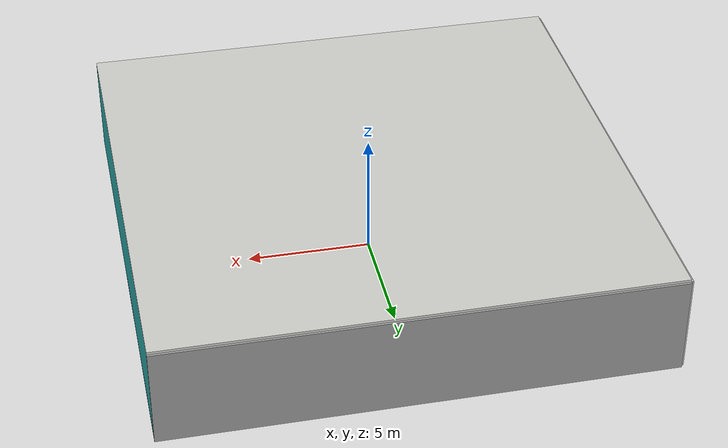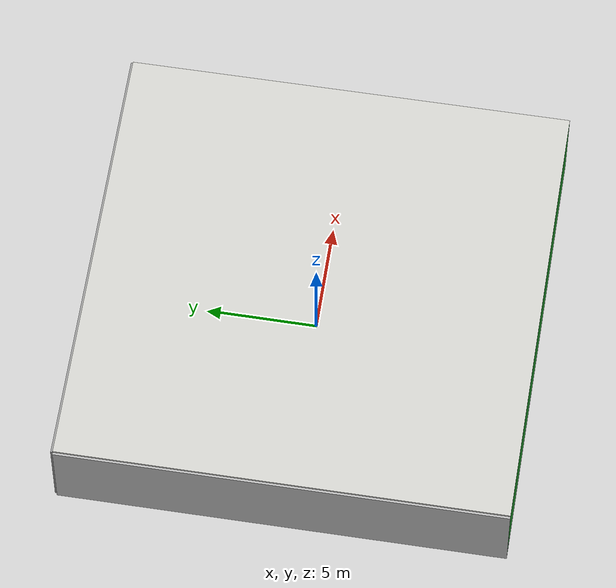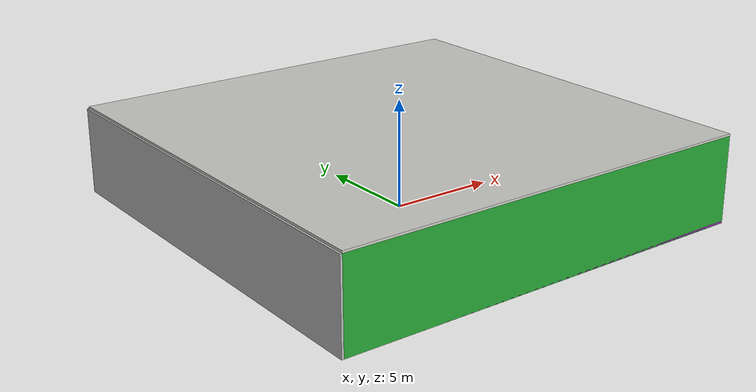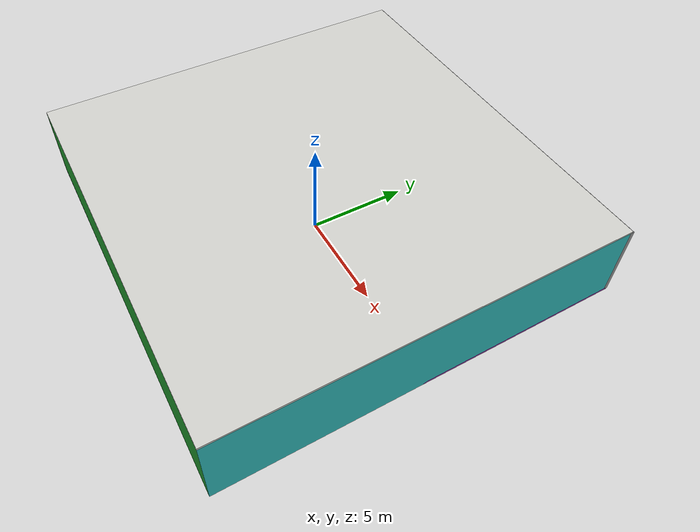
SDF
<sdf version="1.4">
 <world name="default">
  <physics type="ode">
   <max_step_size>0.001</max_step_size>
   <real_time_factor>1</real_time_factor>
   <real_time_update_rate>1000</real_time_update_rate>
   <gravity>0 0 -9.8</gravity>
  </physics>
  <scene><ambient>0.4 0.4 0.4 1</ambient><background>0.7 0.7 0.7 1</background><shadows>1</shadows></scene>
  <model name="Surrounding">
   <static>1</static>
   <link name="Ceiling">
    <collision name="Ceiling_Collision"><geometry><box><size>20 20 0.1</size></box></geometry></collision>
    <visual name="Ceiling_Visual">
     <geometry><box><size>20 20 0.1</size></box></geometry>
     <material>
      <script><uri>file://media/materials/scripts/gazebo.material</uri><name>Gazebo/CeilingTiled</name></script>
     </material>
    </visual>
    <pose>0 0 4.05 0 0 0</pose>
   </link>
   <link name="Wall_South">
    <collision name="Wall_South_Collision">
     <geometry><box><size>20 0 4</size></box></geometry>
     <pose>0 0 2 0 -0 0</pose>
    </collision>
    <visual name="Wall_South_Visual">
     <pose>0 0 2 0 -0 0</pose>
     <geometry><box><size>20 0 4</size></box></geometry>
     <material>
      <script><uri>file://media/materials/scripts/gazebo.material</uri><name>Gazebo/GreenGlow</name></script>
     </material>
    </visual>
    <velocity_decay><linear>0</linear><angular>0</angular></velocity_decay>
    <pose>0 -10 0 0 -0 0</pose>
   </link>
   <link name="Wall_East">
    <collision name="Wall_21_Collision">
     <geometry><box><size>20 0 4</size></box></geometry>
     <pose>0 0 2 0 -0 0</pose>
    </collision>
    <visual name="Wall_21_Visual">
     <pose>0 0 2 0 -0 0</pose>
     <geometry><box><size>20 0 4</size></box></geometry>
     <material>
      <script>
       <uri>file://media/materials/scripts/gazebo.material</uri>
       <name>Gazebo/TurquoiseGlowOutline</name>
      </script>
     </material>
    </visual>
    <velocity_decay><linear>0</linear><angular>0</angular></velocity_decay>
    <pose>10 0 0 0 -0 1.5708</pose>
   </link>
   <link name="Wall_North">
    <collision name="Wall_22_Collision">
     <geometry><box><size>20 0.2 4</size></box></geometry>
     <pose>0 0 2 0 -0 0</pose>
    </collision>
    <visual name="Wall_22_Visual">
     <pose>0 0 2 0 -0 0</pose>
     <geometry><box><size>20 0.2 4</size></box></geometry>
     <material>
      <script><uri>file://media/materials/scripts/gazebo.material</uri><name>Gazebo/GreyGradientSky</name></script>
     </material>
    </visual>
    <velocity_decay><linear>0</linear><angular>0</angular></velocity_decay>
    <pose>0 10 0 0 -0 0</pose>
   </link>
   <link name="Wall_West">
    <collision name="Wall_23_Collision">
     <geometry><box><size>20 0.2 4</size></box></geometry>
     <pose>0 0 2 0 -0 0</pose>
    </collision>
    <visual name="Wall_23_Visual">
     <pose>0 0 2 0 -0 0</pose>
     <geometry><box><size>20 0.2 4</size></box></geometry>
     <material>
      <script><uri>file://media/materials/scripts/gazebo.material</uri><name>Gazebo/LightOn</name></script>
     </material>
    </visual>
    <velocity_decay><linear>0</linear><angular>0</angular></velocity_decay>
    <pose>-10 0 0 0 0 -1.5708</pose>
   </link>
   <link name="Ground_link">
    <collision name="collision">
     <pose>0 0 .05 0 -0 0</pose>
     <geometry><box><size>20 20 0.1</size></box></geometry>
    </collision>
    <visual name="visual">
     <pose>0 0 .05 0 -0 0</pose>
     <geometry><box><size>20 20 0.1</size></box></geometry>
     <material>
      <script><uri>file://media/materials/scripts/gazebo.material</uri><name>Gazebo/PurpleGlow</name></script>
     </material>
    </visual>
   </link>
   <static>1</static>
  </model>
  <spherical_coordinates>
   <surface_model>EARTH_WGS84</surface_model>
   <latitude_deg>0</latitude_deg>
   <longitude_deg>0</longitude_deg>
   <elevation>0</elevation>
   <heading_deg>0</heading_deg>
  </spherical_coordinates>
  <light name="lightball_0" type="diffuse">
   <diffuse>0.8 0.8 0.8 1</diffuse>
   <specular>0.2 0.2 0.2 1</specular>
   <attenuation>
    <range>100</range>
    <constant>0.7</constant>
    <linear>0.01</linear>
    <quadratic>0.001</quadratic>
   </attenuation>
   <direction>-0.5 0.1 -0.9</direction>
   <pose>-1.15674897587 -9.23434875111 3.61947312362 0 0 0</pose>
  </light>
  <light name="lightball_1" type="diffuse">
   <diffuse>0.8 0.8 0.8 1</diffuse>
   <specular>0.2 0.2 0.2 1</specular>
   <attenuation>
    <range>100</range>
    <constant>0.7</constant>
    <linear>0.01</linear>
    <quadratic>0.001</quadratic>
   </attenuation>
   <direction>-0.5 0.1 -0.9</direction>
   <pose>-8.57847212246 2.7779531991 3.78677853122 0 0 0</pose>
  </light>
  <include><uri>model://cabinet</uri><pose>-4.12704913624 -4.8380837534 0 0 0 1.31606543918</pose></include>
  <include>
   <uri>model://construction_cone</uri>
   <pose>-4.94732076871 6.76099349275 0 0 0 0.75400867949</pose>
  </include>
  <include>
   <uri>model://construction_cone</uri>
   <pose>-1.16280248997 4.4430731085 0 0 0 0.0563677895508</pose>
  </include>
  <include>
   <uri>model://construction_cone</uri>
   <pose>-1.10599195209 7.74232790542 0 0 0 0.570764600093</pose>
  </include>
  <include>
   <uri>model://robocup_3Dsim_goal</uri>
   <pose>2.18963644382 -4.87309632854 0 0 0 0.265749588272</pose>
  </include>
  <include><uri>model://cabinet</uri><pose>1.9358770397 -1.42446496628 0 0 0 2.13276726083</pose></include>
  <include><uri>model://cabinet</uri><pose>4.34391315964 -8.07515055136 0 0 0 2.89332760875</pose></include>
  <include><uri>model://table</uri><pose>3.93805268872 -1.12938658792 0 0 0 0.0813628858361</pose></include>
  <include><uri>model://cabinet</uri><pose>7.43453792156 7.14950305619 0 0 0 0.644961850188</pose></include>
 </world>
</sdf>

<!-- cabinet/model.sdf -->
<sdf version="1.5">
  <model name="cabinet">
    <static>true</static>
    <link name="cabinet_bottom_plate">
      <inertial>
        <pose>0 0 -1 0 0 0</pose>
        <inertia>
          <ixx>2.050000</ixx>
          <ixy>0</ixy>
          <ixz>0</ixz>
          <iyy>2.050000</iyy>
          <iyz>0</iyz>
          <izz>2.050000</izz>
        </inertia>
        <mass>25.000000</mass>
      </inertial>
      <collision name="cabinet_bottom_plate_geom">
        <pose>0 0 0.010000 0 0 0</pose>
        <geometry>
          <box>
            <size>0.450000 0.450000 0.020000</size>
          </box>
        </geometry>
      </collision>
      <visual name="cabinet_bottom_plate_geom_visual">
        <pose>0 0 0.010000 0 0 0</pose>
        <geometry>
          <box>
            <size>0.450000 0.450000 0.020000</size>
          </box>
        </geometry>
        <material>
          <script>
            <uri>model://media/materials/scripts/gazebo.material</uri>
            <name>Gazebo/Wood</name>
          </script>
        </material>
      </visual>
      <collision name="cabinet_bottom_plate_geom_cabinet_back_plate">
        <pose>0.235000 0 0.510000 0 0 0</pose>
        <geometry>
          <box>
            <size>0.020000 0.450000 1.020000</size>
          </box>
        </geometry>
      </collision>
      <visual name="cabinet_bottom_plate_geom_cabinet_back_plate_visual">
        <pose>0.235000 0 0.510000 0 0 0</pose>
        <geometry>
          <box>
            <size>0.020000 0.450000 1.020000</size>
          </box>
        </geometry>
        <material>
          <script>
            <uri>model://media/materials/scripts/gazebo.material</uri>
            <name>Gazebo/Wood</name>
          </script>
        </material>
      </visual>
      <collision name="cabinet_bottom_plate_geom_cabinet_left_plate">
        <pose>0 0.235000 0.510000 0 0 0</pose>
        <geometry>
          <box>
            <size>0.450000 0.020000 1.020000</size>
          </box>
        </geometry>
      </collision>
      <visual name="cabinet_bottom_plate_geom_cabinet_left_plate_visual">
        <pose>0 0.235000 0.510000 0 0 0</pose>
        <geometry>
          <box>
            <size>0.450000 0.020000 1.020000</size>
          </box>
        </geometry>
        <material>
          <script>
            <uri>model://media/materials/scripts/gazebo.material</uri>
            <name>Gazebo/Wood</name>
          </script>
        </material>
      </visual>
      <collision name="cabinet_bottom_plate_geom_cabinet_middle_plate">
        <pose>0 0 0.510000 0 0 0</pose>
        <geometry>
          <box>
            <size>0.450000 0.450000 0.020000</size>
          </box>
        </geometry>
      </collision>
      <visual name="cabinet_bottom_plate_geom_cabinet_middle_plate_visual">
        <pose>0 0 0.510000 0 0 0</pose>
        <geometry>
          <box>
            <size>0.450000 0.450000 0.020000</size>
          </box>
        </geometry>
        <material>
          <script>
            <uri>model://media/materials/scripts/gazebo.material</uri>
            <name>Gazebo/Wood</name>
          </script>
        </material>
      </visual>
      <collision name="cabinet_bottom_plate_geom_cabinet_right_plate">
        <pose>0 -0.235000 0.510000 0 0 0</pose>
        <geometry>
          <box>
            <size>0.450000 0.020000 1.020000</size>
          </box>
        </geometry>
      </collision>
      <visual name="cabinet_bottom_plate_geom_cabinet_right_plate_visual">
        <pose>0 -0.235000 0.510000 0 0 0</pose>
        <geometry>
          <box>
            <size>0.450000 0.020000 1.020000</size>
          </box>
        </geometry>
        <material>
          <script>
            <uri>model://media/materials/scripts/gazebo.material</uri>
            <name>Gazebo/Wood</name>
          </script>
        </material>
      </visual>
      <collision name="cabinet_bottom_plate_geom_cabinet_top_plate">
        <pose>0 0 1.010000 0 0 0</pose>
        <geometry>
          <box>
            <size>0.450000 0.450000 0.020000</size>
          </box>
        </geometry>
      </collision>
      <visual name="cabinet_bottom_plate_geom_cabinet_top_plate_visual">
        <pose>0 0 1.010000 0 0 0</pose>
        <geometry>
          <box>
            <size>0.450000 0.450000 0.020000</size>
          </box>
        </geometry>
        <material>
          <script>
            <uri>model://media/materials/scripts/gazebo.material</uri>
            <name>Gazebo/Wood</name>
          </script>
        </material>
      </visual>
    </link>
  </model>
</sdf>

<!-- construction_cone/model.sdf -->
<sdf version="1.5">
  <model name="Construction Cone">
    <link name="link">
      <collision name="collision">
        <geometry>
          <mesh>
            <scale>10 10 10</scale>
            <uri>file://isr-testbed/construction_cone/meshes/construction_cone.dae</uri>
          </mesh>
        </geometry>
      </collision>
      <visual name="visual">
        <geometry>
          <mesh>
            <scale>10 10 10</scale>
            <uri>file://isr-testbed/construction_cone/meshes/construction_cone.dae</uri>
          </mesh>
        </geometry>
      </visual>
    </link>
  </model>
</sdf>

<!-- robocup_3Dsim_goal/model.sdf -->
<sdf version="1.5">
  <model name="robocup_3d_goal">
    <static>true</static>
    <link name="left_post">
      <pose>0 1.05 0.45 0 0 0</pose>
      <collision name="collision">
        <geometry>
          <cylinder>
            <radius>0.05</radius>
            <length>0.9</length>
          </cylinder>
        </geometry>
      </collision>
      <visual name="visual">
        <geometry>
          <cylinder>
            <radius>0.05</radius>
            <length>0.9</length>
          </cylinder>
        </geometry>
        <material>
          <script>
            <uri>file://media/materials/scripts/gazebo.material</uri>
            <name>Gazebo/ZincYellow</name>
          </script>
        </material>
      </visual>
    </link>
    <link name="left_support_horiz_lower">
      <pose>0.30 1.05 0.01 0 0 0</pose>
      <collision name="collision">
        <geometry>
          <box>
            <size>0.50 0.02 0.02</size>
          </box>
        </geometry>
      </collision>
      <visual name="visual">
        <geometry>
          <box>
            <size>0.50 0.02 0.02</size>
          </box>
        </geometry>
        <material>
          <script>
            <uri>file://media/materials/scripts/gazebo.material</uri>
            <name>Gazebo/White</name>
          </script>
        </material>
      </visual>
    </link>
    <link name="left_support_horiz_upper">
      <pose>0.30 1.05 0.79 0 0 0</pose>
      <collision name="collision">
        <geometry>
          <box>
            <size>0.50 0.02 0.02</size>
          </box>
        </geometry>
      </collision>
      <visual name="visual">
        <geometry>
          <box>
            <size>0.50 0.02 0.02</size>
          </box>
        </geometry>
        <material>
          <script>
            <uri>file://media/materials/scripts/gazebo.material</uri>
            <name>Gazebo/White</name>
          </script>
        </material>
      </visual>
    </link>
    <link name="left_support_vertical">
      <pose>0.56 1.05 0.4 0 1.5708 0</pose>
      <collision name="collision">
        <geometry>
          <box>
            <size>0.80 0.02 0.02</size>
          </box>
        </geometry>
      </collision>
      <visual name="visual">
        <geometry>
          <box>
            <size>0.80 0.02 0.02</size>
          </box>
        </geometry>
        <material>
          <script>
            <uri>file://media/materials/scripts/gazebo.material</uri>
            <name>Gazebo/White</name>
          </script>
        </material>
      </visual>
    </link>
    <link name="right_support_horiz_lower">
      <pose>0.30 -1.05 0.01 0 0 0</pose>
      <collision name="collision">
        <geometry>
          <box>
            <size>0.50 0.02 0.02</size>
          </box>
        </geometry>
      </collision>
      <visual name="visual">
        <geometry>
          <box>
            <size>0.50 0.02 0.02</size>
          </box>
        </geometry>
        <material>
          <script>
            <uri>file://media/materials/scripts/gazebo.material</uri>
            <name>Gazebo/White</name>
          </script>
        </material>
      </visual>
    </link>
    <link name="right_support_horiz_upper">
      <pose>0.30 -1.05 0.79 0 0 0</pose>
      <collision name="collision">
        <geometry>
          <box>
            <size>0.50 0.02 0.02</size>
          </box>
        </geometry>
      </collision>
      <visual name="visual">
        <geometry>
          <box>
            <size>0.50 0.02 0.02</size>
          </box>
        </geometry>
        <material>
          <script>
            <uri>file://media/materials/scripts/gazebo.material</uri>
            <name>Gazebo/White</name>
          </script>
        </material>
      </visual>
    </link>
    <link name="right_support_vertical">
      <pose>0.56 -1.05 0.4 0 1.5708 0</pose>
      <collision name="collision">
        <geometry>
          <box>
            <size>0.80 0.02 0.02</size>
          </box>
        </geometry>
      </collision>
      <visual name="visual">
        <geometry>
          <box>
            <size>0.80 0.02 0.02</size>
          </box>
        </geometry>
        <material>
          <script>
            <uri>file://media/materials/scripts/gazebo.material</uri>
            <name>Gazebo/White</name>
          </script>
        </material>
      </visual>
    </link>
    <link name="center_support_horiz_lower">
      <pose>0.56 0 0.01 0 1.5708 0</pose>
      <collision name="collision">
        <geometry>
          <box>
            <size>0.02 2.08 0.02</size>
          </box>
        </geometry>
      </collision>
      <visual name="visual">
        <geometry>
          <box>
            <size>0.02 2.08 0.02</size>
          </box>
        </geometry>
        <material>
          <script>
            <uri>file://media/materials/scripts/gazebo.material</uri>
            <name>Gazebo/White</name>
          </script>
        </material>
      </visual>
    </link>
    <link name="center_support_horiz_upper">
      <pose>0.56 0 0.79 0 1.5708 0</pose>
      <collision name="collision">
        <geometry>
          <box>
            <size>0.02 2.08 0.02</size>
          </box>
        </geometry>
      </collision>
      <visual name="visual">
        <geometry>
          <box>
            <size>0.02 2.08 0.02</size>
          </box>
        </geometry>
        <material>
          <script>
            <uri>file://media/materials/scripts/gazebo.material</uri>
            <name>Gazebo/White</name>
          </script>
        </material>
      </visual>
    </link>
    <link name="right_post">
      <pose>0 -1.05 0.45 0 0 0</pose>
      <collision name="collision">
        <geometry>
          <cylinder>
            <radius>0.05</radius>
            <length>0.9</length>
          </cylinder>
        </geometry>
      </collision>
      <visual name="visual">
        <geometry>
          <cylinder>
            <radius>0.05</radius>
            <length>0.9</length>
          </cylinder>
        </geometry>
        <material>
          <script>
            <uri>file://media/materials/scripts/gazebo.material</uri>
            <name>Gazebo/ZincYellow</name>
          </script>
        </material>
      </visual>
    </link>
    <link name="crossbar">
      <pose>0 0 0.85 1.57 1.57 0</pose>
      <collision name="collision">
        <geometry>
          <cylinder>
            <radius>0.05</radius>
            <length>2.0</length>
          </cylinder>
        </geometry>
      </collision>
      <visual name="visual">
        <geometry>
          <cylinder>
            <radius>0.05</radius>
            <length>2.0</length>
          </cylinder>
        </geometry>
        <material>
          <script>
            <uri>file://media/materials/scripts/gazebo.material</uri>
            <name>Gazebo/ZincYellow</name>
          </script>
        </material>
      </visual>
    </link>
    <link name="center_net">
      <pose>0.56 0 0.40 0 0 0</pose>
      <collision name="collision">
        <geometry>
          <box>
            <size>0.01 2.1 0.80</size>
          </box>
        </geometry>
      </collision>
      <visual name="visual">
        <geometry>
          <box>
            <size>0.01 2.1 0.80</size>
          </box>
        </geometry>
        <material>
          <script>
            <uri>model://../model_source/models/robocup09_spl_field/materials/scripts/</uri>
            <uri>model://../model_source/models/robocup09_spl_field/materials/textures/</uri>
            <name>RoboCup/Net</name>
          </script>
        </material>
      </visual>
    </link>
    <link name="left_net">
      <pose>0.30 1.05 0.40 0 0 0</pose>
      <collision name="collision">
        <geometry>
          <box>
            <size>0.50 0.01 0.76</size>
          </box>
        </geometry>
      </collision>
      <visual name="visual">
        <geometry>
          <box>
            <size>0.50 0.01 0.76</size>
          </box>
        </geometry>
        <material>
          <script>
            <uri>model://../model_source/models/robocup09_spl_field/materials/scripts/</uri>
            <uri>model://../model_source/models/robocup09_spl_field/materials/textures/</uri>
            <name>RoboCup/Net</name>
          </script>
        </material>
      </visual>
    </link>
    <link name="right_net">
      <pose>0.30 -1.05 0.40 0 0 0</pose>
      <collision name="collision">
        <geometry>
          <box>
            <size>0.50 0.01 0.76</size>
          </box>
        </geometry>
      </collision>
      <visual name="visual">
        <geometry>
          <box>
            <size>0.50 0.01 0.76</size>
          </box>
        </geometry>
        <material>
          <script>
            <uri>model://../model_source/models/robocup09_spl_field/materials/scripts/</uri>
            <uri>model://../model_source/models/robocup09_spl_field/materials/textures/</uri>
            <name>RoboCup/Net</name>
          </script>
        </material>
      </visual>
    </link>
  </model>
</sdf>

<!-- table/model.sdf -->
<sdf version="1.5">
  <model name="table">
    <static>true</static>
    <link name="link">
      <collision name="surface">
        <pose>0 0 1.0 0 0 0</pose>
        <geometry>
          <box>
            <size>1.5 0.8 0.03</size>
          </box>
        </geometry>
        <surface>
          <friction>
            <ode>
              <mu>0.6</mu>
              <mu2>0.6</mu2>
            </ode>
          </friction>
        </surface>
      </collision>
      <visual name="visual1">
        <pose>0 0 1.0 0 0 0</pose>
        <geometry>
          <box>
            <size>1.5 0.8 0.03</size>
          </box>
        </geometry>
        <material>
          <script>
            <uri>model://media/materials/scripts/gazebo.material</uri>
            <name>Gazebo/Wood</name>
          </script>
        </material>
      </visual>
      <collision name="front_left_leg">
        <pose>0.68 0.38 0.5 0 0 0</pose>
        <geometry>
          <cylinder>
            <radius>0.02</radius>
            <length>1.0</length>
          </cylinder>
        </geometry>
      </collision>
      <visual name="front_left_leg">
        <pose>0.68 0.38 0.5 0 0 0</pose>
        <geometry>
          <cylinder>
            <radius>0.02</radius>
            <length>1.0</length>
          </cylinder>
        </geometry>
        <material>
          <script>
            <uri>model://media/materials/scripts/gazebo.material</uri>
            <name>Gazebo/Grey</name>
          </script>
        </material>
      </visual>
      <collision name="front_right_leg">
        <pose>0.68 -0.38 0.5 0 0 0</pose>
        <geometry>
          <cylinder>
            <radius>0.02</radius>
            <length>1.0</length>
          </cylinder>
        </geometry>
      </collision>
      <visual name="front_right_leg">
        <pose>0.68 -0.38 0.5 0 0 0</pose>
        <geometry>
          <cylinder>
            <radius>0.02</radius>
            <length>1.0</length>
          </cylinder>
        </geometry>
        <material>
          <script>
            <uri>model://media/materials/scripts/gazebo.material</uri>
            <name>Gazebo/Grey</name>
          </script>
        </material>
      </visual>
      <collision name="back_right_leg">
        <pose>-0.68 -0.38 0.5 0 0 0</pose>
        <geometry>
          <cylinder>
            <radius>0.02</radius>
            <length>1.0</length>
          </cylinder>
        </geometry>
      </collision>
      <visual name="back_right_leg">
        <pose>-0.68 -0.38 0.5 0 0 0</pose>
        <geometry>
          <cylinder>
            <radius>0.02</radius>
            <length>1.0</length>
          </cylinder>
        </geometry>
        <material>
          <script>
            <uri>model://media/materials/scripts/gazebo.material</uri>
            <name>Gazebo/Grey</name>
          </script>
        </material>
      </visual>
      <collision name="back_left_leg">
        <pose>-0.68 0.38 0.5 0 0 0</pose>
        <geometry>
          <cylinder>
            <radius>0.02</radius>
            <length>1.0</length>
          </cylinder>
        </geometry>
      </collision>
      <visual name="back_left_leg">
        <pose>-0.68 0.38 0.5 0 0 0</pose>
        <geometry>
          <cylinder>
            <radius>0.02</radius>
            <length>1.0</length>
          </cylinder>
        </geometry>
        <material>
          <script>
            <uri>model://media/materials/scripts/gazebo.material</uri>
            <name>Gazebo/Grey</name>
          </script>
        </material>
      </visual>
    </link>
  </model>
</sdf>
